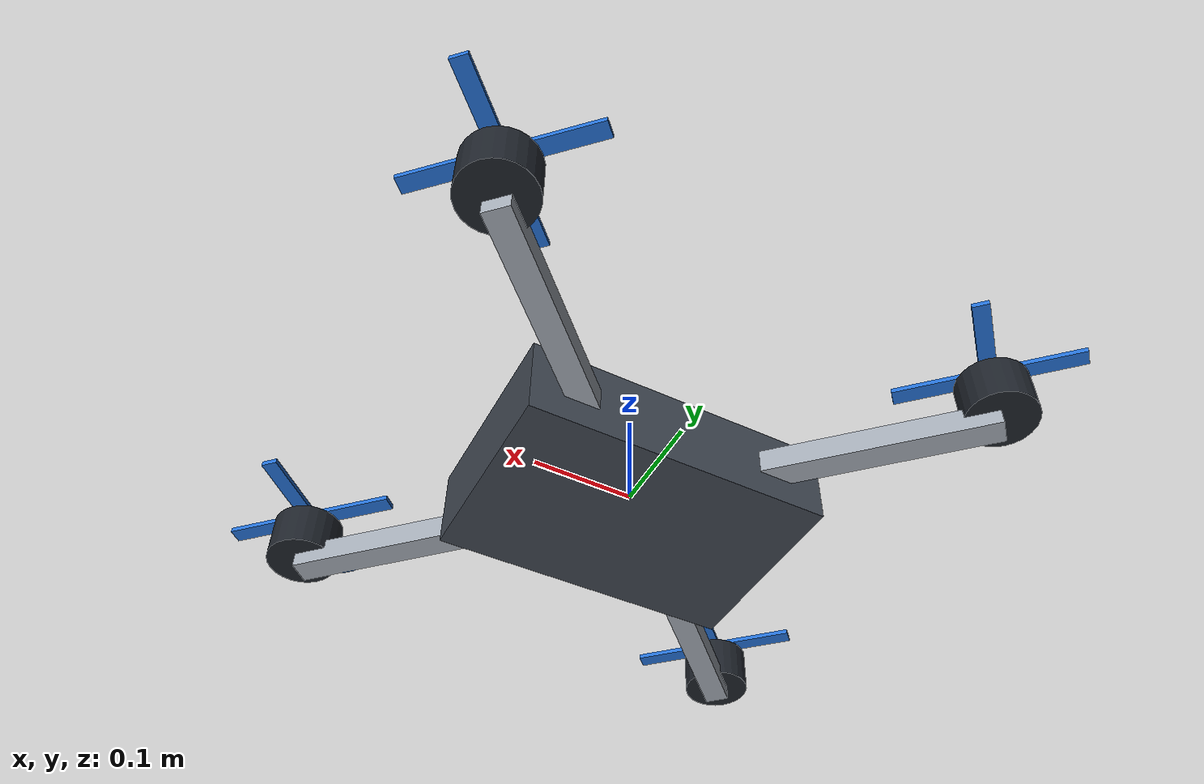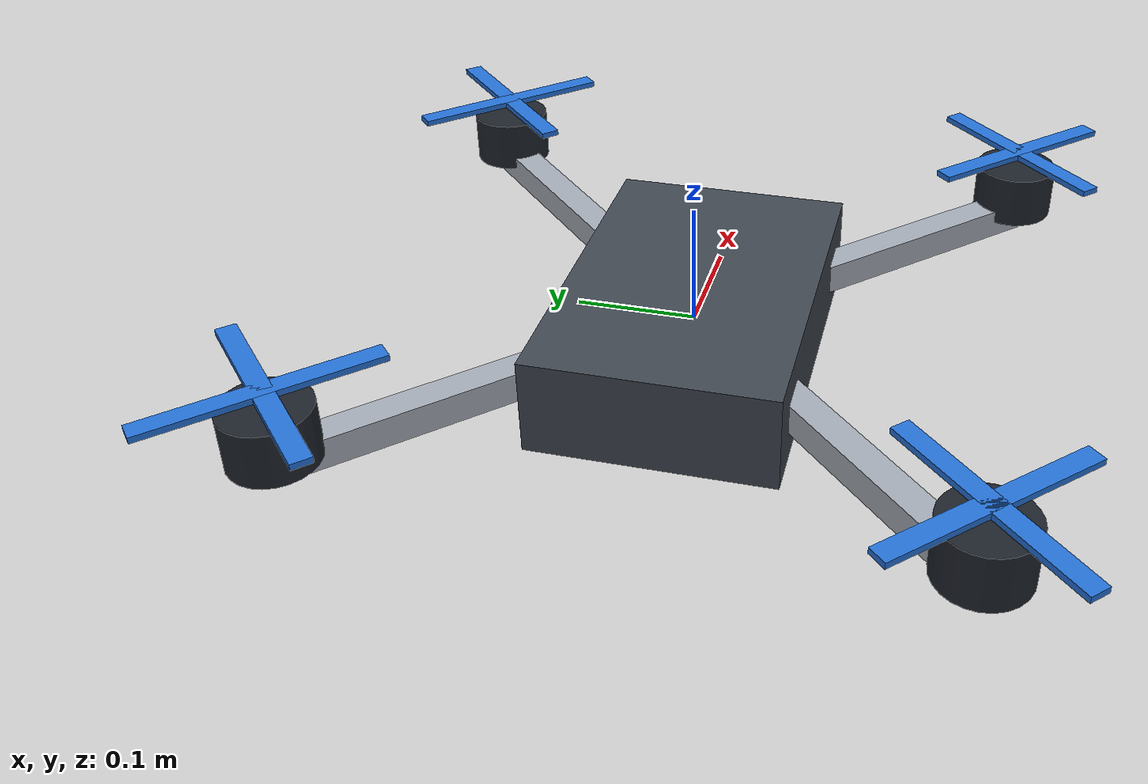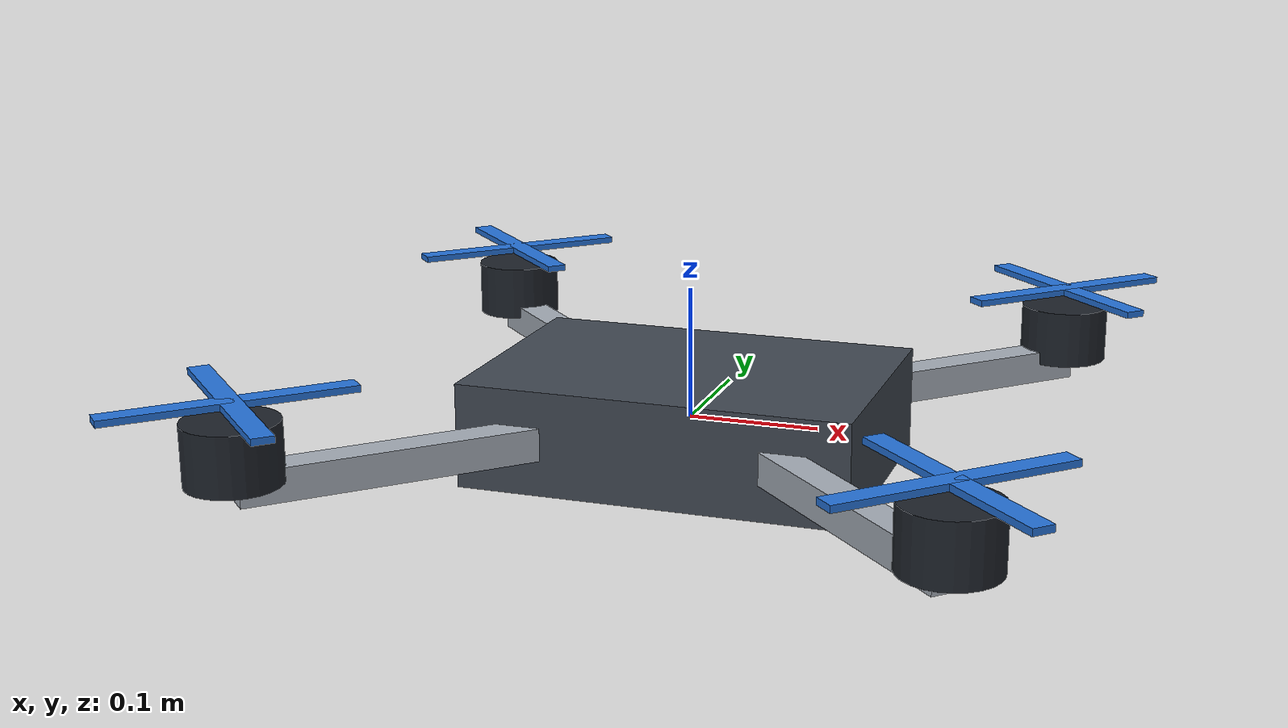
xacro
<?xml version="1.0"?>

<robot xmlns:xacro="http://www.ros.org/wiki/xacro"
       name="ras_drone">

  <xacro:property name="body_length" value="0.30"/>
  <xacro:property name="body_width" value="0.20"/>
  <xacro:property name="body_height" value="0.08"/>

  <xacro:property name="arm_length" value="0.22"/>
  <xacro:property name="arm_width" value="0.025"/>
  <xacro:property name="arm_height" value="0.025"/>

  <xacro:property name="arm_radius" value="0.24"/>

  <xacro:property name="motor_radius" value="0.035"/>
  <xacro:property name="motor_height" value="0.045"/>

  <xacro:property name="propeller_length" value="0.18"/>
  <xacro:property name="propeller_width" value="0.016"/>
  <xacro:property name="propeller_height" value="0.005"/>

  <link name="base_link">
    <visual>
      <geometry>
        <box size="${body_length}
                   ${body_width}
                   ${body_height}"/>
      </geometry>

      <material name="dark_gray">
        <color rgba="0.25 0.28 0.32 1.0"/>
      </material>
    </visual>
  </link>

  <xacro:macro name="create_arm"
               params="name x y yaw">

    <link name="${name}_arm">
      <visual>
        <geometry>
          <box size="${arm_length}
                     ${arm_width}
                     ${arm_height}"/>
        </geometry>

        <material name="arm_gray">
          <color rgba="0.65 0.68 0.72 1.0"/>
        </material>
      </visual>
    </link>

    <joint name="${name}_joint" type="fixed">
      <parent link="base_link"/>
      <child link="${name}_arm"/>

      <origin xyz="${x} ${y} 0"
              rpy="0 0 ${yaw}"/>
    </joint>

  </xacro:macro>

  <xacro:macro name="create_motor"
             params="name">

    <link name="${name}_motor">

      <visual>
        <geometry>
          <cylinder
            radius="${motor_radius}"
            length="${motor_height}"/>
        </geometry>

        <material name="motor_black">
          <color rgba="0.12 0.14 0.17 1.0"/>
        </material>
      </visual>

    </link>

    <joint name="${name}_motor_joint" type="fixed">

      <parent link="${name}_arm"/>
      <child link="${name}_motor"/>

      <origin
        xyz="${arm_length/2} 0 0.025"
        rpy="0 0 0"/>

    </joint>

      <link name="${name}_propeller">

      <visual>
        <geometry>
          <box size="${propeller_length}
                     ${propeller_width}
                     ${propeller_height}"/>
        </geometry>

        <material name="propeller_blue">
          <color rgba="0.15 0.45 0.85 1.0"/>
        </material>
      </visual>

      <visual>
        <geometry>
          <box size="${propeller_width}
                     ${propeller_length}
                     ${propeller_height}"/>
        </geometry>

        <material name="propeller_blue">
          <color rgba="0.15 0.45 0.85 1.0"/>
        </material>
      </visual>

    </link>

    <joint name="${name}_propeller_joint"
           type="continuous">

      <parent link="${name}_motor"/>
      <child link="${name}_propeller"/>

      <origin xyz="0 0 0.035" rpy="0 0 0"/>
      <axis xyz="0 0 1"/>

    </joint>

  </xacro:macro>

  <xacro:create_arm
        name="front_left"
        x="${arm_radius*cos(pi/4)}"
        y="${arm_radius*sin(pi/4)}"
        yaw="${pi/4}"/>

  <xacro:create_arm
      name="front_right"
      x="${arm_radius*cos(-pi/4)}"
      y="${arm_radius*sin(-pi/4)}"
      yaw="${-pi/4}"/>

  <xacro:create_arm
      name="rear_left"
      x="${arm_radius*cos(3*pi/4)}"
      y="${arm_radius*sin(3*pi/4)}"
      yaw="${3*pi/4}"/>

  <xacro:create_arm
      name="rear_right"
      x="${arm_radius*cos(-3*pi/4)}"
      y="${arm_radius*sin(-3*pi/4)}"
      yaw="${-3*pi/4}"/>

  <xacro:create_motor name="front_left"/>
  <xacro:create_motor name="front_right"/>
  <xacro:create_motor name="rear_left"/>
  <xacro:create_motor name="rear_right"/>

</robot>
